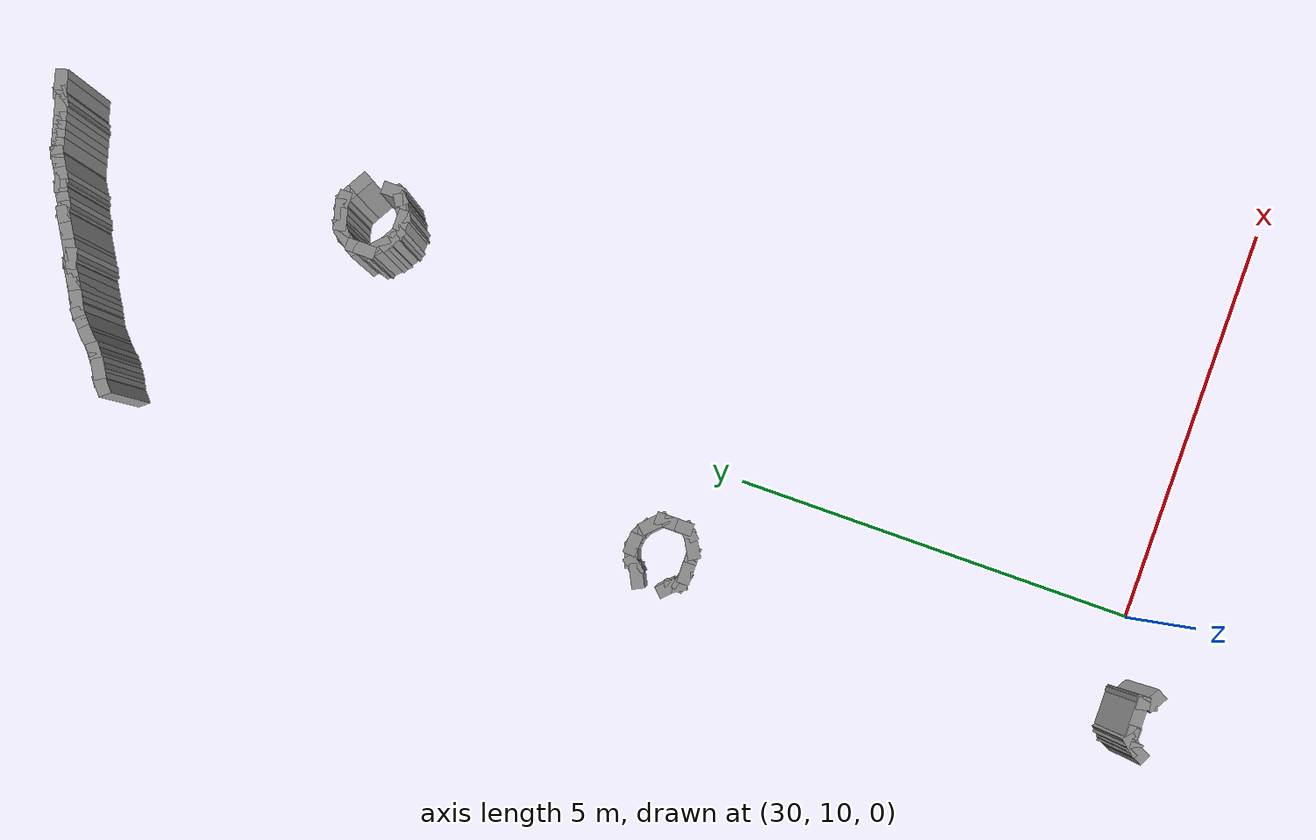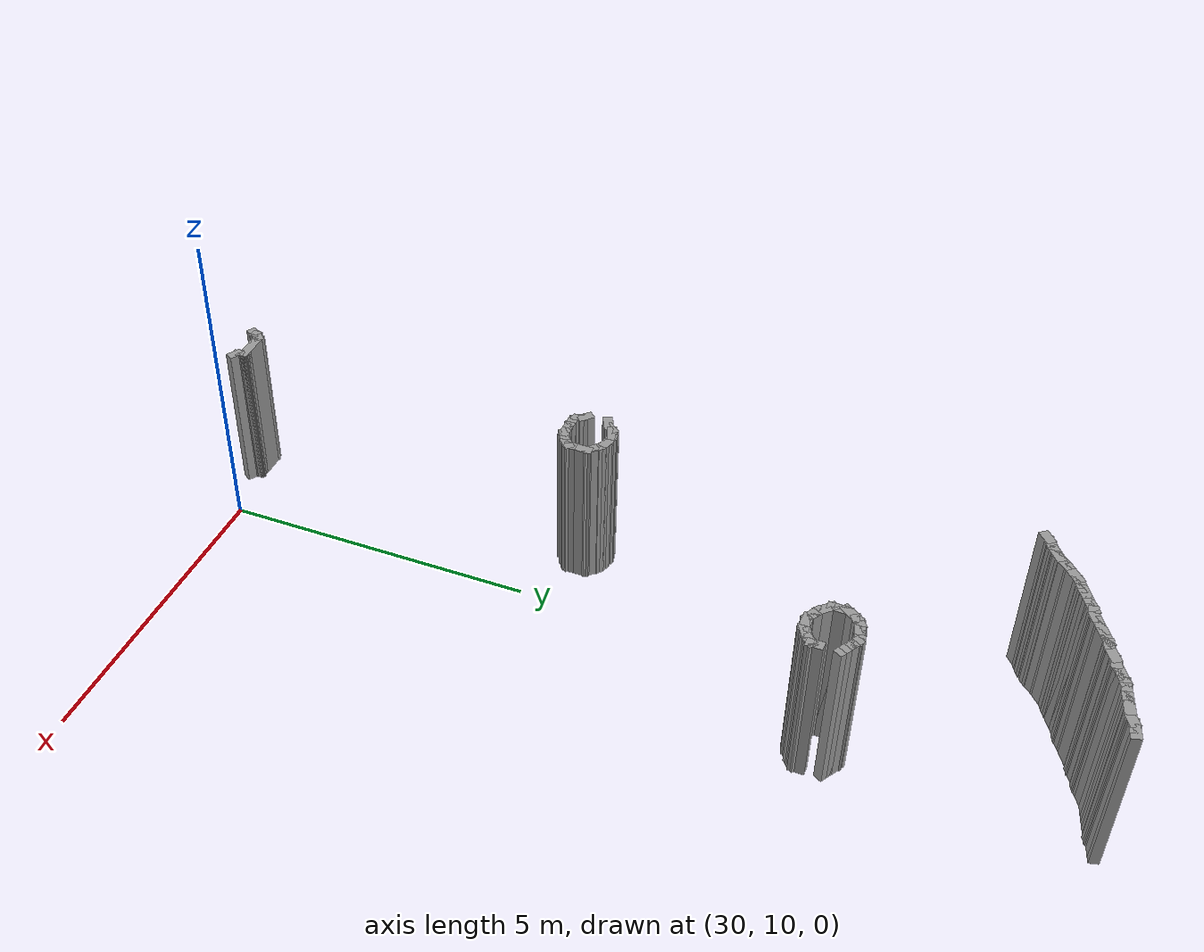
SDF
<sdf version="1.6">
 <model name="draft3">
  <pose>34.2026 -2.81154 0 0 -0 0</pose>
  <link name="Wall_144">
   <collision name="Wall_144_Collision">
    <geometry><box><size>0.253291 0.15 2.5</size></box></geometry>
    <pose>0 0 1.25 0 -0 0</pose>
   </collision>
   <visual name="Wall_144_Visual">
    <pose>0 0 1.25 0 -0 0</pose>
    <geometry><box><size>0.253291 0.15 2.5</size></box></geometry>
    <material>
     <script><uri>file://media/materials/scripts/gazebo.material</uri><name>Gazebo/Grey</name></script>
     <ambient>1 1 1 1</ambient>
    </material>
   </visual>
   <pose>-5.68023 25.2011 0 0 -0 0.694738</pose>
  </link>
  <link name="Wall_145">
   <collision name="Wall_145_Collision">
    <geometry><box><size>0.238716 0.15 2.5</size></box></geometry>
    <pose>0 0 1.25 0 -0 0</pose>
   </collision>
   <visual name="Wall_145_Visual">
    <pose>0 0 1.25 0 -0 0</pose>
    <geometry><box><size>0.238716 0.15 2.5</size></box></geometry>
    <material>
     <script><uri>file://media/materials/scripts/gazebo.material</uri><name>Gazebo/Grey</name></script>
     <ambient>1 1 1 1</ambient>
    </material>
   </visual>
   <pose>-5.60088 25.254 0 0 -0 0.463648</pose>
  </link>
  <link name="Wall_146">
   <collision name="Wall_146_Collision">
    <geometry><box><size>0.256623 0.15 2.5</size></box></geometry>
    <pose>0 0 1.25 0 -0 0</pose>
   </collision>
   <visual name="Wall_146_Visual">
    <pose>0 0 1.25 0 -0 0</pose>
    <geometry><box><size>0.256623 0.15 2.5</size></box></geometry>
    <material>
     <script><uri>file://media/materials/scripts/gazebo.material</uri><name>Gazebo/Grey</name></script>
     <ambient>1 1 1 1</ambient>
    </material>
   </visual>
   <pose>-5.51492 25.3003 0 0 -0 0.519146</pose>
  </link>
  <link name="Wall_147">
   <collision name="Wall_147_Collision">
    <geometry><box><size>0.216125 0.15 2.5</size></box></geometry>
    <pose>0 0 1.25 0 -0 0</pose>
   </collision>
   <visual name="Wall_147_Visual">
    <pose>0 0 1.25 0 -0 0</pose>
    <geometry><box><size>0.216125 0.15 2.5</size></box></geometry>
    <material>
     <script><uri>file://media/materials/scripts/gazebo.material</uri><name>Gazebo/Grey</name></script>
     <ambient>1 1 1 1</ambient>
    </material>
   </visual>
   <pose>-5.44218 25.3465 0 0 -0 0.643501</pose>
  </link>
  <link name="Wall_148">
   <collision name="Wall_148_Collision">
    <geometry><box><size>0.263766 0.15 2.5</size></box></geometry>
    <pose>0 0 1.25 0 -0 0</pose>
   </collision>
   <visual name="Wall_148_Visual">
    <pose>0 0 1.25 0 -0 0</pose>
    <geometry><box><size>0.263766 0.15 2.5</size></box></geometry>
    <material>
     <script><uri>file://media/materials/scripts/gazebo.material</uri><name>Gazebo/Grey</name></script>
     <ambient>1 1 1 1</ambient>
    </material>
   </visual>
   <pose>-5.36944 25.3994 0 0 -0 0.620249</pose>
  </link>
  <link name="Wall_149">
   <collision name="Wall_149_Collision">
    <geometry><box><size>0.262218 0.15 2.5</size></box></geometry>
    <pose>0 0 1.25 0 -0 0</pose>
   </collision>
   <visual name="Wall_149_Visual">
    <pose>0 0 1.25 0 -0 0</pose>
    <geometry><box><size>0.262218 0.15 2.5</size></box></geometry>
    <material>
     <script><uri>file://media/materials/scripts/gazebo.material</uri><name>Gazebo/Grey</name></script>
     <ambient>1 1 1 1</ambient>
    </material>
   </visual>
   <pose>-5.28348 25.4722 0 0 -0 0.785398</pose>
  </link>
  <link name="Wall_150">
   <collision name="Wall_150_Collision">
    <geometry><box><size>0.243515 0.15 2.5</size></box></geometry>
    <pose>0 0 1.25 0 -0 0</pose>
   </collision>
   <visual name="Wall_150_Visual">
    <pose>0 0 1.25 0 -0 0</pose>
    <geometry><box><size>0.243515 0.15 2.5</size></box></geometry>
    <material>
     <script><uri>file://media/materials/scripts/gazebo.material</uri><name>Gazebo/Grey</name></script>
     <ambient>1 1 1 1</ambient>
    </material>
   </visual>
   <pose>-5.21074 25.5449 0 0 -0 0.785398</pose>
  </link>
  <link name="Wall_151">
   <collision name="Wall_151_Collision">
    <geometry><box><size>0.271928 0.15 2.5</size></box></geometry>
    <pose>0 0 1.25 0 -0 0</pose>
   </collision>
   <visual name="Wall_151_Visual">
    <pose>0 0 1.25 0 -0 0</pose>
    <geometry><box><size>0.271928 0.15 2.5</size></box></geometry>
    <material>
     <script><uri>file://media/materials/scripts/gazebo.material</uri><name>Gazebo/Grey</name></script>
     <ambient>1 1 1 1</ambient>
    </material>
   </visual>
   <pose>-5.13139 25.6177 0 0 -0 0.708626</pose>
  </link>
  <link name="Wall_152">
   <collision name="Wall_152_Collision">
    <geometry><box><size>0.271928 0.15 2.5</size></box></geometry>
    <pose>0 0 1.25 0 -0 0</pose>
   </collision>
   <visual name="Wall_152_Visual">
    <pose>0 0 1.25 0 -0 0</pose>
    <geometry><box><size>0.271928 0.15 2.5</size></box></geometry>
    <material>
     <script><uri>file://media/materials/scripts/gazebo.material</uri><name>Gazebo/Grey</name></script>
     <ambient>1 1 1 1</ambient>
    </material>
   </visual>
   <pose>-5.03882 25.697 0 0 -0 0.708626</pose>
  </link>
  <link name="Wall_153">
   <collision name="Wall_153_Collision">
    <geometry><box><size>0.256623 0.15 2.5</size></box></geometry>
    <pose>0 0 1.25 0 -0 0</pose>
   </collision>
   <visual name="Wall_153_Visual">
    <pose>0 0 1.25 0 -0 0</pose>
    <geometry><box><size>0.256623 0.15 2.5</size></box></geometry>
    <material>
     <script><uri>file://media/materials/scripts/gazebo.material</uri><name>Gazebo/Grey</name></script>
     <ambient>1 1 1 1</ambient>
    </material>
   </visual>
   <pose>-4.94624 25.7631 0 0 -0 0.519146</pose>
  </link>
  <link name="Wall_154">
   <collision name="Wall_154_Collision">
    <geometry><box><size>0.238716 0.15 2.5</size></box></geometry>
    <pose>0 0 1.25 0 -0 0</pose>
   </collision>
   <visual name="Wall_154_Visual">
    <pose>0 0 1.25 0 -0 0</pose>
    <geometry><box><size>0.238716 0.15 2.5</size></box></geometry>
    <material>
     <script><uri>file://media/materials/scripts/gazebo.material</uri><name>Gazebo/Grey</name></script>
     <ambient>1 1 1 1</ambient>
    </material>
   </visual>
   <pose>-4.86028 25.8094 0 0 -0 0.463648</pose>
  </link>
  <link name="Wall_155">
   <collision name="Wall_155_Collision">
    <geometry><box><size>0.25 0.15 2.5</size></box></geometry>
    <pose>0 0 1.25 0 -0 0</pose>
   </collision>
   <visual name="Wall_155_Visual">
    <pose>0 0 1.25 0 -0 0</pose>
    <geometry><box><size>0.25 0.15 2.5</size></box></geometry>
    <material>
     <script><uri>file://media/materials/scripts/gazebo.material</uri><name>Gazebo/Grey</name></script>
     <ambient>1 1 1 1</ambient>
    </material>
   </visual>
   <pose>-4.7773 25.8543 0 0 -0 0.523599</pose>
  </link>
  <link name="Wall_156">
   <collision name="Wall_156_Collision">
    <geometry><box><size>0.25 0.15 2.5</size></box></geometry>
    <pose>0 0 1.25 0 -0 0</pose>
   </collision>
   <visual name="Wall_156_Visual">
    <pose>0 0 1.25 0 -0 0</pose>
    <geometry><box><size>0.25 0.15 2.5</size></box></geometry>
    <material>
     <script><uri>file://media/materials/scripts/gazebo.material</uri><name>Gazebo/Grey</name></script>
     <ambient>1 1 1 1</ambient>
    </material>
   </visual>
   <pose>-4.6907 25.9043 0 0 -0 0.523599</pose>
  </link>
  <link name="Wall_157">
   <collision name="Wall_157_Collision">
    <geometry><box><size>0.25 0.15 2.5</size></box></geometry>
    <pose>0 0 1.25 0 -0 0</pose>
   </collision>
   <visual name="Wall_157_Visual">
    <pose>0 0 1.25 0 -0 0</pose>
    <geometry><box><size>0.25 0.15 2.5</size></box></geometry>
    <material>
     <script><uri>file://media/materials/scripts/gazebo.material</uri><name>Gazebo/Grey</name></script>
     <ambient>1 1 1 1</ambient>
    </material>
   </visual>
   <pose>-4.6041 25.9543 0 0 -0 0.523599</pose>
  </link>
  <link name="Wall_158">
   <collision name="Wall_158_Collision">
    <geometry><box><size>0.25 0.15 2.5</size></box></geometry>
    <pose>0 0 1.25 0 -0 0</pose>
   </collision>
   <visual name="Wall_158_Visual">
    <pose>0 0 1.25 0 -0 0</pose>
    <geometry><box><size>0.25 0.15 2.5</size></box></geometry>
    <material>
     <script><uri>file://media/materials/scripts/gazebo.material</uri><name>Gazebo/Grey</name></script>
     <ambient>1 1 1 1</ambient>
    </material>
   </visual>
   <pose>-4.5175 26.0043 0 0 -0 0.523599</pose>
  </link>
  <link name="Wall_159">
   <collision name="Wall_159_Collision">
    <geometry><box><size>0.25 0.15 2.5</size></box></geometry>
    <pose>0 0 1.25 0 -0 0</pose>
   </collision>
   <visual name="Wall_159_Visual">
    <pose>0 0 1.25 0 -0 0</pose>
    <geometry><box><size>0.25 0.15 2.5</size></box></geometry>
    <material>
     <script><uri>file://media/materials/scripts/gazebo.material</uri><name>Gazebo/Grey</name></script>
     <ambient>1 1 1 1</ambient>
    </material>
   </visual>
   <pose>-4.4259 26.0422 0 0 -0 0.261799</pose>
  </link>
  <link name="Wall_160">
   <collision name="Wall_160_Collision">
    <geometry><box><size>0.25 0.15 2.5</size></box></geometry>
    <pose>0 0 1.25 0 -0 0</pose>
   </collision>
   <visual name="Wall_160_Visual">
    <pose>0 0 1.25 0 -0 0</pose>
    <geometry><box><size>0.25 0.15 2.5</size></box></geometry>
    <material>
     <script><uri>file://media/materials/scripts/gazebo.material</uri><name>Gazebo/Grey</name></script>
     <ambient>1 1 1 1</ambient>
    </material>
   </visual>
   <pose>-4.3343 26.0801 0 0 -0 0.523599</pose>
  </link>
  <link name="Wall_161">
   <collision name="Wall_161_Collision">
    <geometry><box><size>0.25 0.15 2.5</size></box></geometry>
    <pose>0 0 1.25 0 -0 0</pose>
   </collision>
   <visual name="Wall_161_Visual">
    <pose>0 0 1.25 0 -0 0</pose>
    <geometry><box><size>0.25 0.15 2.5</size></box></geometry>
    <material>
     <script><uri>file://media/materials/scripts/gazebo.material</uri><name>Gazebo/Grey</name></script>
     <ambient>1 1 1 1</ambient>
    </material>
   </visual>
   <pose>-4.2477 26.1301 0 0 -0 0.523599</pose>
  </link>
  <link name="Wall_162">
   <collision name="Wall_162_Collision">
    <geometry><box><size>0.25 0.15 2.5</size></box></geometry>
    <pose>0 0 1.25 0 -0 0</pose>
   </collision>
   <visual name="Wall_162_Visual">
    <pose>0 0 1.25 0 -0 0</pose>
    <geometry><box><size>0.25 0.15 2.5</size></box></geometry>
    <material>
     <script><uri>file://media/materials/scripts/gazebo.material</uri><name>Gazebo/Grey</name></script>
     <ambient>1 1 1 1</ambient>
    </material>
   </visual>
   <pose>-4.1611 26.1801 0 0 -0 0.523599</pose>
  </link>
  <link name="Wall_163">
   <collision name="Wall_163_Collision">
    <geometry><box><size>0.25 0.15 2.5</size></box></geometry>
    <pose>0 0 1.25 0 -0 0</pose>
   </collision>
   <visual name="Wall_163_Visual">
    <pose>0 0 1.25 0 -0 0</pose>
    <geometry><box><size>0.25 0.15 2.5</size></box></geometry>
    <material>
     <script><uri>file://media/materials/scripts/gazebo.material</uri><name>Gazebo/Grey</name></script>
     <ambient>1 1 1 1</ambient>
    </material>
   </visual>
   <pose>-4.07449 26.2301 0 0 -0 0.523599</pose>
  </link>
  <link name="Wall_164">
   <collision name="Wall_164_Collision">
    <geometry><box><size>0.25 0.15 2.5</size></box></geometry>
    <pose>0 0 1.25 0 -0 0</pose>
   </collision>
   <visual name="Wall_164_Visual">
    <pose>0 0 1.25 0 -0 0</pose>
    <geometry><box><size>0.25 0.15 2.5</size></box></geometry>
    <material>
     <script><uri>file://media/materials/scripts/gazebo.material</uri><name>Gazebo/Grey</name></script>
     <ambient>1 1 1 1</ambient>
    </material>
   </visual>
   <pose>-3.98789 26.2801 0 0 -0 0.523599</pose>
  </link>
  <link name="Wall_165">
   <collision name="Wall_165_Collision">
    <geometry><box><size>0.25 0.15 2.5</size></box></geometry>
    <pose>0 0 1.25 0 -0 0</pose>
   </collision>
   <visual name="Wall_165_Visual">
    <pose>0 0 1.25 0 -0 0</pose>
    <geometry><box><size>0.25 0.15 2.5</size></box></geometry>
    <material>
     <script><uri>file://media/materials/scripts/gazebo.material</uri><name>Gazebo/Grey</name></script>
     <ambient>1 1 1 1</ambient>
    </material>
   </visual>
   <pose>-3.89629 26.3181 0 0 -0 0.261799</pose>
  </link>
  <link name="Wall_166">
   <collision name="Wall_166_Collision">
    <geometry><box><size>0.25 0.15 2.5</size></box></geometry>
    <pose>0 0 1.25 0 -0 0</pose>
   </collision>
   <visual name="Wall_166_Visual">
    <pose>0 0 1.25 0 -0 0</pose>
    <geometry><box><size>0.25 0.15 2.5</size></box></geometry>
    <material>
     <script><uri>file://media/materials/scripts/gazebo.material</uri><name>Gazebo/Grey</name></script>
     <ambient>1 1 1 1</ambient>
    </material>
   </visual>
   <pose>-3.80469 26.356 0 0 -0 0.523599</pose>
  </link>
  <link name="Wall_167">
   <collision name="Wall_167_Collision">
    <geometry><box><size>0.25 0.15 2.5</size></box></geometry>
    <pose>0 0 1.25 0 -0 0</pose>
   </collision>
   <visual name="Wall_167_Visual">
    <pose>0 0 1.25 0 -0 0</pose>
    <geometry><box><size>0.25 0.15 2.5</size></box></geometry>
    <material>
     <script><uri>file://media/materials/scripts/gazebo.material</uri><name>Gazebo/Grey</name></script>
     <ambient>1 1 1 1</ambient>
    </material>
   </visual>
   <pose>-3.71809 26.406 0 0 -0 0.523599</pose>
  </link>
  <link name="Wall_168">
   <collision name="Wall_168_Collision">
    <geometry><box><size>0.25 0.15 2.5</size></box></geometry>
    <pose>0 0 1.25 0 -0 0</pose>
   </collision>
   <visual name="Wall_168_Visual">
    <pose>0 0 1.25 0 -0 0</pose>
    <geometry><box><size>0.25 0.15 2.5</size></box></geometry>
    <material>
     <script><uri>file://media/materials/scripts/gazebo.material</uri><name>Gazebo/Grey</name></script>
     <ambient>1 1 1 1</ambient>
    </material>
   </visual>
   <pose>-3.62649 26.444 0 0 -0 0.261799</pose>
  </link>
  <link name="Wall_169">
   <collision name="Wall_169_Collision">
    <geometry><box><size>0.25 0.15 2.5</size></box></geometry>
    <pose>0 0 1.25 0 -0 0</pose>
   </collision>
   <visual name="Wall_169_Visual">
    <pose>0 0 1.25 0 -0 0</pose>
    <geometry><box><size>0.25 0.15 2.5</size></box></geometry>
    <material>
     <script><uri>file://media/materials/scripts/gazebo.material</uri><name>Gazebo/Grey</name></script>
     <ambient>1 1 1 1</ambient>
    </material>
   </visual>
   <pose>-3.5349 26.4819 0 0 -0 0.523599</pose>
  </link>
  <link name="Wall_170">
   <collision name="Wall_170_Collision">
    <geometry><box><size>0.25 0.15 2.5</size></box></geometry>
    <pose>0 0 1.25 0 -0 0</pose>
   </collision>
   <visual name="Wall_170_Visual">
    <pose>0 0 1.25 0 -0 0</pose>
    <geometry><box><size>0.25 0.15 2.5</size></box></geometry>
    <material>
     <script><uri>file://media/materials/scripts/gazebo.material</uri><name>Gazebo/Grey</name></script>
     <ambient>1 1 1 1</ambient>
    </material>
   </visual>
   <pose>-3.44829 26.5319 0 0 -0 0.523599</pose>
  </link>
  <link name="Wall_171">
   <collision name="Wall_171_Collision">
    <geometry><box><size>0.25 0.15 2.5</size></box></geometry>
    <pose>0 0 1.25 0 -0 0</pose>
   </collision>
   <visual name="Wall_171_Visual">
    <pose>0 0 1.25 0 -0 0</pose>
    <geometry><box><size>0.25 0.15 2.5</size></box></geometry>
    <material>
     <script><uri>file://media/materials/scripts/gazebo.material</uri><name>Gazebo/Grey</name></script>
     <ambient>1 1 1 1</ambient>
    </material>
   </visual>
   <pose>-3.36169 26.5819 0 0 -0 0.523599</pose>
  </link>
  <link name="Wall_172">
   <collision name="Wall_172_Collision">
    <geometry><box><size>0.25 0.15 2.5</size></box></geometry>
    <pose>0 0 1.25 0 -0 0</pose>
   </collision>
   <visual name="Wall_172_Visual">
    <pose>0 0 1.25 0 -0 0</pose>
    <geometry><box><size>0.25 0.15 2.5</size></box></geometry>
    <material>
     <script><uri>file://media/materials/scripts/gazebo.material</uri><name>Gazebo/Grey</name></script>
     <ambient>1 1 1 1</ambient>
    </material>
   </visual>
   <pose>-3.27009 26.6198 0 0 -0 0.261799</pose>
  </link>
  <link name="Wall_173">
   <collision name="Wall_173_Collision">
    <geometry><box><size>0.25 0.15 2.5</size></box></geometry>
    <pose>0 0 1.25 0 -0 0</pose>
   </collision>
   <visual name="Wall_173_Visual">
    <pose>0 0 1.25 0 -0 0</pose>
    <geometry><box><size>0.25 0.15 2.5</size></box></geometry>
    <material>
     <script><uri>file://media/materials/scripts/gazebo.material</uri><name>Gazebo/Grey</name></script>
     <ambient>1 1 1 1</ambient>
    </material>
   </visual>
   <pose>-3.1735 26.6457 0 0 -0 0.261799</pose>
  </link>
  <link name="Wall_174">
   <collision name="Wall_174_Collision">
    <geometry><box><size>0.25 0.15 2.5</size></box></geometry>
    <pose>0 0 1.25 0 -0 0</pose>
   </collision>
   <visual name="Wall_174_Visual">
    <pose>0 0 1.25 0 -0 0</pose>
    <geometry><box><size>0.25 0.15 2.5</size></box></geometry>
    <material>
     <script><uri>file://media/materials/scripts/gazebo.material</uri><name>Gazebo/Grey</name></script>
     <ambient>1 1 1 1</ambient>
    </material>
   </visual>
   <pose>-3.07691 26.6716 0 0 -0 0.261799</pose>
  </link>
  <link name="Wall_175">
   <collision name="Wall_175_Collision">
    <geometry><box><size>0.25 0.15 2.5</size></box></geometry>
    <pose>0 0 1.25 0 -0 0</pose>
   </collision>
   <visual name="Wall_175_Visual">
    <pose>0 0 1.25 0 -0 0</pose>
    <geometry><box><size>0.25 0.15 2.5</size></box></geometry>
    <material>
     <script><uri>file://media/materials/scripts/gazebo.material</uri><name>Gazebo/Grey</name></script>
     <ambient>1 1 1 1</ambient>
    </material>
   </visual>
   <pose>-2.98032 26.6975 0 0 -0 0.261799</pose>
  </link>
  <link name="Wall_176">
   <collision name="Wall_176_Collision">
    <geometry><box><size>0.25 0.15 2.5</size></box></geometry>
    <pose>0 0 1.25 0 -0 0</pose>
   </collision>
   <visual name="Wall_176_Visual">
    <pose>0 0 1.25 0 -0 0</pose>
    <geometry><box><size>0.25 0.15 2.5</size></box></geometry>
    <material>
     <script><uri>file://media/materials/scripts/gazebo.material</uri><name>Gazebo/Grey</name></script>
     <ambient>1 1 1 1</ambient>
    </material>
   </visual>
   <pose>-2.88372 26.7234 0 0 -0 0.261799</pose>
  </link>
  <link name="Wall_177">
   <collision name="Wall_177_Collision">
    <geometry><box><size>0.25 0.15 2.5</size></box></geometry>
    <pose>0 0 1.25 0 -0 0</pose>
   </collision>
   <visual name="Wall_177_Visual">
    <pose>0 0 1.25 0 -0 0</pose>
    <geometry><box><size>0.25 0.15 2.5</size></box></geometry>
    <material>
     <script><uri>file://media/materials/scripts/gazebo.material</uri><name>Gazebo/Grey</name></script>
     <ambient>1 1 1 1</ambient>
    </material>
   </visual>
   <pose>-2.78713 26.7493 0 0 -0 0.261799</pose>
  </link>
  <link name="Wall_178">
   <collision name="Wall_178_Collision">
    <geometry><box><size>0.25 0.15 2.5</size></box></geometry>
    <pose>0 0 1.25 0 -0 0</pose>
   </collision>
   <visual name="Wall_178_Visual">
    <pose>0 0 1.25 0 -0 0</pose>
    <geometry><box><size>0.25 0.15 2.5</size></box></geometry>
    <material>
     <script><uri>file://media/materials/scripts/gazebo.material</uri><name>Gazebo/Grey</name></script>
     <ambient>1 1 1 1</ambient>
    </material>
   </visual>
   <pose>-2.69553 26.7872 0 0 -0 0.523599</pose>
  </link>
  <link name="Wall_179">
   <collision name="Wall_179_Collision">
    <geometry><box><size>0.25 0.15 2.5</size></box></geometry>
    <pose>0 0 1.25 0 -0 0</pose>
   </collision>
   <visual name="Wall_179_Visual">
    <pose>0 0 1.25 0 -0 0</pose>
    <geometry><box><size>0.25 0.15 2.5</size></box></geometry>
    <material>
     <script><uri>file://media/materials/scripts/gazebo.material</uri><name>Gazebo/Grey</name></script>
     <ambient>1 1 1 1</ambient>
    </material>
   </visual>
   <pose>-2.60394 26.8251 0 0 -0 0.261799</pose>
  </link>
  <link name="Wall_180">
   <collision name="Wall_180_Collision">
    <geometry><box><size>0.25 0.15 2.5</size></box></geometry>
    <pose>0 0 1.25 0 -0 0</pose>
   </collision>
   <visual name="Wall_180_Visual">
    <pose>0 0 1.25 0 -0 0</pose>
    <geometry><box><size>0.25 0.15 2.5</size></box></geometry>
    <material>
     <script><uri>file://media/materials/scripts/gazebo.material</uri><name>Gazebo/Grey</name></script>
     <ambient>1 1 1 1</ambient>
    </material>
   </visual>
   <pose>-2.50734 26.851 0 0 -0 0.261799</pose>
  </link>
  <link name="Wall_386">
   <collision name="Wall_386_Collision">
    <geometry><box><size>0.5 0.15 2.5</size></box></geometry>
    <pose>0 0 1.25 0 -0 0</pose>
   </collision>
   <visual name="Wall_386_Visual">
    <pose>0 0 1.25 0 -0 0</pose>
    <geometry><box><size>0.5 0.15 2.5</size></box></geometry>
    <material>
     <script><uri>file://media/materials/scripts/gazebo.material</uri><name>Gazebo/Grey</name></script>
     <ambient>1 1 1 1</ambient>
    </material>
   </visual>
   <pose>-5.31074 12.6698 0 0 -0 0</pose>
  </link>
  <link name="Wall_387">
   <collision name="Wall_387_Collision">
    <geometry><box><size>0.16 0.15 2.5</size></box></geometry>
    <pose>0 0 1.25 0 -0 0</pose>
   </collision>
   <visual name="Wall_387_Visual">
    <pose>0 0 1.25 0 -0 0</pose>
    <geometry><box><size>0.16 0.15 2.5</size></box></geometry>
    <material>
     <script><uri>file://media/materials/scripts/gazebo.material</uri><name>Gazebo/Grey</name></script>
     <ambient>1 1 1 1</ambient>
    </material>
   </visual>
   <pose>-5.13074 12.6698 0 0 -0 0</pose>
  </link>
  <link name="Wall_388">
   <collision name="Wall_388_Collision">
    <geometry><box><size>0.16 0.15 2.5</size></box></geometry>
    <pose>0 0 1.25 0 -0 0</pose>
   </collision>
   <visual name="Wall_388_Visual">
    <pose>0 0 1.25 0 -0 0</pose>
    <geometry><box><size>0.16 0.15 2.5</size></box></geometry>
    <material>
     <script><uri>file://media/materials/scripts/gazebo.material</uri><name>Gazebo/Grey</name></script>
     <ambient>1 1 1 1</ambient>
    </material>
   </visual>
   <pose>-5.13074 12.6698 0 0 -0 3.14159</pose>
  </link>
  <link name="Wall_389">
   <collision name="Wall_389_Collision">
    <geometry><box><size>0.25 0.15 2.5</size></box></geometry>
    <pose>0 0 1.25 0 -0 0</pose>
   </collision>
   <visual name="Wall_389_Visual">
    <pose>0 0 1.25 0 -0 0</pose>
    <geometry><box><size>0.25 0.15 2.5</size></box></geometry>
    <material>
     <script><uri>file://media/materials/scripts/gazebo.material</uri><name>Gazebo/Grey</name></script>
     <ambient>1 1 1 1</ambient>
    </material>
   </visual>
   <pose>-5.1228 12.6215 0 0 0 -1.309</pose>
  </link>
  <link name="Wall_390">
   <collision name="Wall_390_Collision">
    <geometry><box><size>0.25 0.15 2.5</size></box></geometry>
    <pose>0 0 1.25 0 -0 0</pose>
   </collision>
   <visual name="Wall_390_Visual">
    <pose>0 0 1.25 0 -0 0</pose>
    <geometry><box><size>0.25 0.15 2.5</size></box></geometry>
    <material>
     <script><uri>file://media/materials/scripts/gazebo.material</uri><name>Gazebo/Grey</name></script>
     <ambient>1 1 1 1</ambient>
    </material>
   </visual>
   <pose>-5.06656 12.5482 0 0 0 -0.523599</pose>
  </link>
  <link name="Wall_409">
   <collision name="Wall_409_Collision">
    <geometry><box><size>0.242149 0.15 2.5</size></box></geometry>
    <pose>0 0 1.25 0 -0 0</pose>
   </collision>
   <visual name="Wall_409_Visual">
    <pose>0 0 1.25 0 -0 0</pose>
    <geometry><box><size>0.242149 0.15 2.5</size></box></geometry>
    <material>
     <script><uri>file://media/materials/scripts/gazebo.material</uri><name>Gazebo/Grey</name></script>
     <ambient>1 1 1 1</ambient>
    </material>
   </visual>
   <pose>-5.69187 12.5362 0 0 -0 1.09802</pose>
  </link>
  <link name="Wall_410">
   <collision name="Wall_410_Collision">
    <geometry><box><size>0.16 0.15 2.5</size></box></geometry>
    <pose>0 0 1.25 0 -0 0</pose>
   </collision>
   <visual name="Wall_410_Visual">
    <pose>0 0 1.25 0 -0 0</pose>
    <geometry><box><size>0.16 0.15 2.5</size></box></geometry>
    <material>
     <script><uri>file://media/materials/scripts/gazebo.material</uri><name>Gazebo/Grey</name></script>
     <ambient>1 1 1 1</ambient>
    </material>
   </visual>
   <pose>-5.66589 12.5772 0 0 -0 0</pose>
  </link>
  <link name="Wall_411">
   <collision name="Wall_411_Collision">
    <geometry><box><size>0.255384 0.15 2.5</size></box></geometry>
    <pose>0 0 1.25 0 -0 0</pose>
   </collision>
   <visual name="Wall_411_Visual">
    <pose>0 0 1.25 0 -0 0</pose>
    <geometry><box><size>0.255384 0.15 2.5</size></box></geometry>
    <material>
     <script><uri>file://media/materials/scripts/gazebo.material</uri><name>Gazebo/Grey</name></script>
     <ambient>1 1 1 1</ambient>
    </material>
   </visual>
   <pose>-5.62622 12.6169 0 0 -0 0.852547</pose>
  </link>
  <link name="Wall_412">
   <collision name="Wall_412_Collision">
    <geometry><box><size>0.2558 0.15 2.5</size></box></geometry>
    <pose>0 0 1.25 0 -0 0</pose>
   </collision>
   <visual name="Wall_412_Visual">
    <pose>0 0 1.25 0 -0 0</pose>
    <geometry><box><size>0.2558 0.15 2.5</size></box></geometry>
    <material>
     <script><uri>file://media/materials/scripts/gazebo.material</uri><name>Gazebo/Grey</name></script>
     <ambient>1 1 1 1</ambient>
    </material>
   </visual>
   <pose>-5.53864 12.6566 0 0 -0 0</pose>
  </link>
  <link name="Wall_534">
   <collision name="Wall_534_Collision">
    <geometry><box><size>0.25 0.15 2.5</size></box></geometry>
    <pose>0 0 1.25 0 -0 0</pose>
   </collision>
   <visual name="Wall_534_Visual">
    <pose>0 0 1.25 0 -0 0</pose>
    <geometry><box><size>0.25 0.15 2.5</size></box></geometry>
    <material>
     <script><uri>file://media/materials/scripts/gazebo.material</uri><name>Gazebo/Grey</name></script>
     <ambient>1 1 1 1</ambient>
    </material>
   </visual>
   <pose>-5.71488 18.2592 0 0 0 -0.785398</pose>
  </link>
  <link name="Wall_535">
   <collision name="Wall_535_Collision">
    <geometry><box><size>0.25 0.15 2.5</size></box></geometry>
    <pose>0 0 1.25 0 -0 0</pose>
   </collision>
   <visual name="Wall_535_Visual">
    <pose>0 0 1.25 0 -0 0</pose>
    <geometry><box><size>0.25 0.15 2.5</size></box></geometry>
    <material>
     <script><uri>file://media/materials/scripts/gazebo.material</uri><name>Gazebo/Grey</name></script>
     <ambient>1 1 1 1</ambient>
    </material>
   </visual>
   <pose>-5.65453 18.1806 0 0 0 -1.0472</pose>
  </link>
  <link name="Wall_536">
   <collision name="Wall_536_Collision">
    <geometry><box><size>0.25 0.15 2.5</size></box></geometry>
    <pose>0 0 1.25 0 -0 0</pose>
   </collision>
   <visual name="Wall_536_Visual">
    <pose>0 0 1.25 0 -0 0</pose>
    <geometry><box><size>0.25 0.15 2.5</size></box></geometry>
    <material>
     <script><uri>file://media/materials/scripts/gazebo.material</uri><name>Gazebo/Grey</name></script>
     <ambient>1 1 1 1</ambient>
    </material>
   </visual>
   <pose>-5.58123 18.1243 0 0 0 -0.261799</pose>
  </link>
  <link name="Wall_537">
   <collision name="Wall_537_Collision">
    <geometry><box><size>0.25 0.15 2.5</size></box></geometry>
    <pose>0 0 1.25 0 -0 0</pose>
   </collision>
   <visual name="Wall_537_Visual">
    <pose>0 0 1.25 0 -0 0</pose>
    <geometry><box><size>0.25 0.15 2.5</size></box></geometry>
    <material>
     <script><uri>file://media/materials/scripts/gazebo.material</uri><name>Gazebo/Grey</name></script>
     <ambient>1 1 1 1</ambient>
    </material>
   </visual>
   <pose>-5.48294 18.1114 0 0 -0 0</pose>
  </link>
  <link name="Wall_538">
   <collision name="Wall_538_Collision">
    <geometry><box><size>0.25 0.15 2.5</size></box></geometry>
    <pose>0 0 1.25 0 -0 0</pose>
   </collision>
   <visual name="Wall_538_Visual">
    <pose>0 0 1.25 0 -0 0</pose>
    <geometry><box><size>0.25 0.15 2.5</size></box></geometry>
    <material>
     <script><uri>file://media/materials/scripts/gazebo.material</uri><name>Gazebo/Grey</name></script>
     <ambient>1 1 1 1</ambient>
    </material>
   </visual>
   <pose>-5.38294 18.1114 0 0 -0 0</pose>
  </link>
  <link name="Wall_539">
   <collision name="Wall_539_Collision">
    <geometry><box><size>0.25 0.15 2.5</size></box></geometry>
    <pose>0 0 1.25 0 -0 0</pose>
   </collision>
   <visual name="Wall_539_Visual">
    <pose>0 0 1.25 0 -0 0</pose>
    <geometry><box><size>0.25 0.15 2.5</size></box></geometry>
    <material>
     <script><uri>file://media/materials/scripts/gazebo.material</uri><name>Gazebo/Grey</name></script>
     <ambient>1 1 1 1</ambient>
    </material>
   </visual>
   <pose>-5.28294 18.1114 0 0 -0 0</pose>
  </link>
  <link name="Wall_540">
   <collision name="Wall_540_Collision">
    <geometry><box><size>0.25 0.15 2.5</size></box></geometry>
    <pose>0 0 1.25 0 -0 0</pose>
   </collision>
   <visual name="Wall_540_Visual">
    <pose>0 0 1.25 0 -0 0</pose>
    <geometry><box><size>0.25 0.15 2.5</size></box></geometry>
    <material>
     <script><uri>file://media/materials/scripts/gazebo.material</uri><name>Gazebo/Grey</name></script>
     <ambient>1 1 1 1</ambient>
    </material>
   </visual>
   <pose>-5.18963 18.1364 0 0 -0 0.523599</pose>
  </link>
  <link name="Wall_541">
   <collision name="Wall_541_Collision">
    <geometry><box><size>0.25 0.15 2.5</size></box></geometry>
    <pose>0 0 1.25 0 -0 0</pose>
   </collision>
   <visual name="Wall_541_Visual">
    <pose>0 0 1.25 0 -0 0</pose>
    <geometry><box><size>0.25 0.15 2.5</size></box></geometry>
    <material>
     <script><uri>file://media/materials/scripts/gazebo.material</uri><name>Gazebo/Grey</name></script>
     <ambient>1 1 1 1</ambient>
    </material>
   </visual>
   <pose>-5.10303 18.1864 0 0 -0 0.523599</pose>
  </link>
  <link name="Wall_542">
   <collision name="Wall_542_Collision">
    <geometry><box><size>0.25 0.15 2.5</size></box></geometry>
    <pose>0 0 1.25 0 -0 0</pose>
   </collision>
   <visual name="Wall_542_Visual">
    <pose>0 0 1.25 0 -0 0</pose>
    <geometry><box><size>0.25 0.15 2.5</size></box></geometry>
    <material>
     <script><uri>file://media/materials/scripts/gazebo.material</uri><name>Gazebo/Grey</name></script>
     <ambient>1 1 1 1</ambient>
    </material>
   </visual>
   <pose>-5.02438 18.2467 0 0 -0 0.785398</pose>
  </link>
  <link name="Wall_543">
   <collision name="Wall_543_Collision">
    <geometry><box><size>0.25 0.15 2.5</size></box></geometry>
    <pose>0 0 1.25 0 -0 0</pose>
   </collision>
   <visual name="Wall_543_Visual">
    <pose>0 0 1.25 0 -0 0</pose>
    <geometry><box><size>0.25 0.15 2.5</size></box></geometry>
    <material>
     <script><uri>file://media/materials/scripts/gazebo.material</uri><name>Gazebo/Grey</name></script>
     <ambient>1 1 1 1</ambient>
    </material>
   </visual>
   <pose>-4.98902 18.3321 0 0 -0 1.5708</pose>
  </link>
  <link name="Wall_544">
   <collision name="Wall_544_Collision">
    <geometry><box><size>0.25 0.15 2.5</size></box></geometry>
    <pose>0 0 1.25 0 -0 0</pose>
   </collision>
   <visual name="Wall_544_Visual">
    <pose>0 0 1.25 0 -0 0</pose>
    <geometry><box><size>0.25 0.15 2.5</size></box></geometry>
    <material>
     <script><uri>file://media/materials/scripts/gazebo.material</uri><name>Gazebo/Grey</name></script>
     <ambient>1 1 1 1</ambient>
    </material>
   </visual>
   <pose>-4.98902 18.4321 0 0 -0 1.5708</pose>
  </link>
  <link name="Wall_545">
   <collision name="Wall_545_Collision">
    <geometry><box><size>0.25 0.15 2.5</size></box></geometry>
    <pose>0 0 1.25 0 -0 0</pose>
   </collision>
   <visual name="Wall_545_Visual">
    <pose>0 0 1.25 0 -0 0</pose>
    <geometry><box><size>0.25 0.15 2.5</size></box></geometry>
    <material>
     <script><uri>file://media/materials/scripts/gazebo.material</uri><name>Gazebo/Grey</name></script>
     <ambient>1 1 1 1</ambient>
    </material>
   </visual>
   <pose>-4.98902 18.5321 0 0 -0 1.5708</pose>
  </link>
  <link name="Wall_546">
   <collision name="Wall_546_Collision">
    <geometry><box><size>0.25 0.15 2.5</size></box></geometry>
    <pose>0 0 1.25 0 -0 0</pose>
   </collision>
   <visual name="Wall_546_Visual">
    <pose>0 0 1.25 0 -0 0</pose>
    <geometry><box><size>0.25 0.15 2.5</size></box></geometry>
    <material>
     <script><uri>file://media/materials/scripts/gazebo.material</uri><name>Gazebo/Grey</name></script>
     <ambient>1 1 1 1</ambient>
    </material>
   </visual>
   <pose>-5.02438 18.6175 0 0 -0 2.35619</pose>
  </link>
  <link name="Wall_547">
   <collision name="Wall_547_Collision">
    <geometry><box><size>0.25 0.15 2.5</size></box></geometry>
    <pose>0 0 1.25 0 -0 0</pose>
   </collision>
   <visual name="Wall_547_Visual">
    <pose>0 0 1.25 0 -0 0</pose>
    <geometry><box><size>0.25 0.15 2.5</size></box></geometry>
    <material>
     <script><uri>file://media/materials/scripts/gazebo.material</uri><name>Gazebo/Grey</name></script>
     <ambient>1 1 1 1</ambient>
    </material>
   </visual>
   <pose>-5.09509 18.6882 0 0 -0 2.35619</pose>
  </link>
  <link name="Wall_548">
   <collision name="Wall_548_Collision">
    <geometry><box><size>0.25 0.15 2.5</size></box></geometry>
    <pose>0 0 1.25 0 -0 0</pose>
   </collision>
   <visual name="Wall_548_Visual">
    <pose>0 0 1.25 0 -0 0</pose>
    <geometry><box><size>0.25 0.15 2.5</size></box></geometry>
    <material>
     <script><uri>file://media/materials/scripts/gazebo.material</uri><name>Gazebo/Grey</name></script>
     <ambient>1 1 1 1</ambient>
    </material>
   </visual>
   <pose>-5.17375 18.7485 0 0 -0 2.61799</pose>
  </link>
  <link name="Wall_549">
   <collision name="Wall_549_Collision">
    <geometry><box><size>0.25 0.15 2.5</size></box></geometry>
    <pose>0 0 1.25 0 -0 0</pose>
   </collision>
   <visual name="Wall_549_Visual">
    <pose>0 0 1.25 0 -0 0</pose>
    <geometry><box><size>0.25 0.15 2.5</size></box></geometry>
    <material>
     <script><uri>file://media/materials/scripts/gazebo.material</uri><name>Gazebo/Grey</name></script>
     <ambient>1 1 1 1</ambient>
    </material>
   </visual>
   <pose>-5.26534 18.7865 0 0 -0 2.87979</pose>
  </link>
  <link name="Wall_550">
   <collision name="Wall_550_Collision">
    <geometry><box><size>0.256194 0.15 2.5</size></box></geometry>
    <pose>0 0 1.25 0 -0 0</pose>
   </collision>
   <visual name="Wall_550_Visual">
    <pose>0 0 1.25 0 -0 0</pose>
    <geometry><box><size>0.256194 0.15 2.5</size></box></geometry>
    <material>
     <script><uri>file://media/materials/scripts/gazebo.material</uri><name>Gazebo/Grey</name></script>
     <ambient>1 1 1 1</ambient>
    </material>
   </visual>
   <pose>-5.36663 18.8028 0 0 -0 3.07769</pose>
  </link>
  <link name="Wall_551">
   <collision name="Wall_551_Collision">
    <geometry><box><size>0.304795 0.15 2.5</size></box></geometry>
    <pose>0 0 1.25 0 -0 0</pose>
   </collision>
   <visual name="Wall_551_Visual">
    <pose>0 0 1.25 0 -0 0</pose>
    <geometry><box><size>0.304795 0.15 2.5</size></box></geometry>
    <material>
     <script><uri>file://media/materials/scripts/gazebo.material</uri><name>Gazebo/Grey</name></script>
     <ambient>1 1 1 1</ambient>
    </material>
   </visual>
   <pose>-5.49235 18.7797 0 0 0 -2.79282</pose>
  </link>
  <link name="Wall_552">
   <collision name="Wall_552_Collision">
    <geometry><box><size>0.253291 0.15 2.5</size></box></geometry>
    <pose>0 0 1.25 0 -0 0</pose>
   </collision>
   <visual name="Wall_552_Visual">
    <pose>0 0 1.25 0 -0 0</pose>
    <geometry><box><size>0.253291 0.15 2.5</size></box></geometry>
    <material>
     <script><uri>file://media/materials/scripts/gazebo.material</uri><name>Gazebo/Grey</name></script>
     <ambient>1 1 1 1</ambient>
    </material>
   </visual>
   <pose>-5.59815 18.7136 0 0 0 -2.26553</pose>
  </link>
  <link name="Wall_553">
   <collision name="Wall_553_Collision">
    <geometry><box><size>0.29786 0.15 2.5</size></box></geometry>
    <pose>0 0 1.25 0 -0 0</pose>
   </collision>
   <visual name="Wall_553_Visual">
    <pose>0 0 1.25 0 -0 0</pose>
    <geometry><box><size>0.29786 0.15 2.5</size></box></geometry>
    <material>
     <script><uri>file://media/materials/scripts/gazebo.material</uri><name>Gazebo/Grey</name></script>
     <ambient>1 1 1 1</ambient>
    </material>
   </visual>
   <pose>-5.69734 18.6409 0 0 0 -2.67794</pose>
  </link>
  <link name="Wall_577">
   <collision name="Wall_577_Collision">
    <geometry><box><size>0.25 0.15 2.5</size></box></geometry>
    <pose>0 0 1.25 0 -0 0</pose>
   </collision>
   <visual name="Wall_577_Visual">
    <pose>0 0 1.25 0 -0 0</pose>
    <geometry><box><size>0.25 0.15 2.5</size></box></geometry>
    <material>
     <script><uri>file://media/materials/scripts/gazebo.material</uri><name>Gazebo/Grey</name></script>
     <ambient>1 1 1 1</ambient>
    </material>
   </visual>
   <pose>-3.19781 22.9617 0 0 0 -1.5708</pose>
  </link>
  <link name="Wall_578">
   <collision name="Wall_578_Collision">
    <geometry><box><size>0.25 0.15 2.5</size></box></geometry>
    <pose>0 0 1.25 0 -0 0</pose>
   </collision>
   <visual name="Wall_578_Visual">
    <pose>0 0 1.25 0 -0 0</pose>
    <geometry><box><size>0.25 0.15 2.5</size></box></geometry>
    <material>
     <script><uri>file://media/materials/scripts/gazebo.material</uri><name>Gazebo/Grey</name></script>
     <ambient>1 1 1 1</ambient>
    </material>
   </visual>
   <pose>-3.19781 22.8617 0 0 0 -1.5708</pose>
  </link>
  <link name="Wall_579">
   <collision name="Wall_579_Collision">
    <geometry><box><size>0.25 0.15 2.5</size></box></geometry>
    <pose>0 0 1.25 0 -0 0</pose>
   </collision>
   <visual name="Wall_579_Visual">
    <pose>0 0 1.25 0 -0 0</pose>
    <geometry><box><size>0.25 0.15 2.5</size></box></geometry>
    <material>
     <script><uri>file://media/materials/scripts/gazebo.material</uri><name>Gazebo/Grey</name></script>
     <ambient>1 1 1 1</ambient>
    </material>
   </visual>
   <pose>-3.16246 22.7764 0 0 0 -0.785398</pose>
  </link>
  <link name="Wall_580">
   <collision name="Wall_580_Collision">
    <geometry><box><size>0.25 0.15 2.5</size></box></geometry>
    <pose>0 0 1.25 0 -0 0</pose>
   </collision>
   <visual name="Wall_580_Visual">
    <pose>0 0 1.25 0 -0 0</pose>
    <geometry><box><size>0.25 0.15 2.5</size></box></geometry>
    <material>
     <script><uri>file://media/materials/scripts/gazebo.material</uri><name>Gazebo/Grey</name></script>
     <ambient>1 1 1 1</ambient>
    </material>
   </visual>
   <pose>-3.09175 22.7057 0 0 0 -0.785398</pose>
  </link>
  <link name="Wall_581">
   <collision name="Wall_581_Collision">
    <geometry><box><size>0.25 0.15 2.5</size></box></geometry>
    <pose>0 0 1.25 0 -0 0</pose>
   </collision>
   <visual name="Wall_581_Visual">
    <pose>0 0 1.25 0 -0 0</pose>
    <geometry><box><size>0.25 0.15 2.5</size></box></geometry>
    <material>
     <script><uri>file://media/materials/scripts/gazebo.material</uri><name>Gazebo/Grey</name></script>
     <ambient>1 1 1 1</ambient>
    </material>
   </visual>
   <pose>-3.01309 22.6453 0 0 0 -0.523599</pose>
  </link>
  <link name="Wall_582">
   <collision name="Wall_582_Collision">
    <geometry><box><size>0.25 0.15 2.5</size></box></geometry>
    <pose>0 0 1.25 0 -0 0</pose>
   </collision>
   <visual name="Wall_582_Visual">
    <pose>0 0 1.25 0 -0 0</pose>
    <geometry><box><size>0.25 0.15 2.5</size></box></geometry>
    <material>
     <script><uri>file://media/materials/scripts/gazebo.material</uri><name>Gazebo/Grey</name></script>
     <ambient>1 1 1 1</ambient>
    </material>
   </visual>
   <pose>-2.92649 22.5953 0 0 0 -0.523599</pose>
  </link>
  <link name="Wall_583">
   <collision name="Wall_583_Collision">
    <geometry><box><size>0.25 0.15 2.5</size></box></geometry>
    <pose>0 0 1.25 0 -0 0</pose>
   </collision>
   <visual name="Wall_583_Visual">
    <pose>0 0 1.25 0 -0 0</pose>
    <geometry><box><size>0.25 0.15 2.5</size></box></geometry>
    <material>
     <script><uri>file://media/materials/scripts/gazebo.material</uri><name>Gazebo/Grey</name></script>
     <ambient>1 1 1 1</ambient>
    </material>
   </visual>
   <pose>-2.83319 22.5703 0 0 -0 0</pose>
  </link>
  <link name="Wall_584">
   <collision name="Wall_584_Collision">
    <geometry><box><size>0.25 0.15 2.5</size></box></geometry>
    <pose>0 0 1.25 0 -0 0</pose>
   </collision>
   <visual name="Wall_584_Visual">
    <pose>0 0 1.25 0 -0 0</pose>
    <geometry><box><size>0.25 0.15 2.5</size></box></geometry>
    <material>
     <script><uri>file://media/materials/scripts/gazebo.material</uri><name>Gazebo/Grey</name></script>
     <ambient>1 1 1 1</ambient>
    </material>
   </visual>
   <pose>-2.73319 22.5703 0 0 -0 0</pose>
  </link>
  <link name="Wall_585">
   <collision name="Wall_585_Collision">
    <geometry><box><size>0.25 0.15 2.5</size></box></geometry>
    <pose>0 0 1.25 0 -0 0</pose>
   </collision>
   <visual name="Wall_585_Visual">
    <pose>0 0 1.25 0 -0 0</pose>
    <geometry><box><size>0.25 0.15 2.5</size></box></geometry>
    <material>
     <script><uri>file://media/materials/scripts/gazebo.material</uri><name>Gazebo/Grey</name></script>
     <ambient>1 1 1 1</ambient>
    </material>
   </visual>
   <pose>-2.63989 22.5953 0 0 -0 0.523599</pose>
  </link>
  <link name="Wall_586">
   <collision name="Wall_586_Collision">
    <geometry><box><size>0.25 0.15 2.5</size></box></geometry>
    <pose>0 0 1.25 0 -0 0</pose>
   </collision>
   <visual name="Wall_586_Visual">
    <pose>0 0 1.25 0 -0 0</pose>
    <geometry><box><size>0.25 0.15 2.5</size></box></geometry>
    <material>
     <script><uri>file://media/materials/scripts/gazebo.material</uri><name>Gazebo/Grey</name></script>
     <ambient>1 1 1 1</ambient>
    </material>
   </visual>
   <pose>-2.55328 22.6453 0 0 -0 0.523599</pose>
  </link>
  <link name="Wall_587">
   <collision name="Wall_587_Collision">
    <geometry><box><size>0.25 0.15 2.5</size></box></geometry>
    <pose>0 0 1.25 0 -0 0</pose>
   </collision>
   <visual name="Wall_587_Visual">
    <pose>0 0 1.25 0 -0 0</pose>
    <geometry><box><size>0.25 0.15 2.5</size></box></geometry>
    <material>
     <script><uri>file://media/materials/scripts/gazebo.material</uri><name>Gazebo/Grey</name></script>
     <ambient>1 1 1 1</ambient>
    </material>
   </visual>
   <pose>-2.47463 22.7057 0 0 -0 0.785398</pose>
  </link>
  <link name="Wall_588">
   <collision name="Wall_588_Collision">
    <geometry><box><size>0.25 0.15 2.5</size></box></geometry>
    <pose>0 0 1.25 0 -0 0</pose>
   </collision>
   <visual name="Wall_588_Visual">
    <pose>0 0 1.25 0 -0 0</pose>
    <geometry><box><size>0.25 0.15 2.5</size></box></geometry>
    <material>
     <script><uri>file://media/materials/scripts/gazebo.material</uri><name>Gazebo/Grey</name></script>
     <ambient>1 1 1 1</ambient>
    </material>
   </visual>
   <pose>-2.43927 22.791 0 0 -0 1.5708</pose>
  </link>
  <link name="Wall_592">
   <collision name="Wall_592_Collision">
    <geometry><box><size>0.25 0.15 2.5</size></box></geometry>
    <pose>0 0 1.25 0 -0 0</pose>
   </collision>
   <visual name="Wall_592_Visual">
    <pose>0 0 1.25 0 -0 0</pose>
    <geometry><box><size>0.25 0.15 2.5</size></box></geometry>
    <material>
     <script><uri>file://media/materials/scripts/gazebo.material</uri><name>Gazebo/Grey</name></script>
     <ambient>1 1 1 1</ambient>
    </material>
   </visual>
   <pose>-2.48258 23.166 0 0 -0 2.61799</pose>
  </link>
  <link name="Wall_593">
   <collision name="Wall_593_Collision">
    <geometry><box><size>0.25 0.15 2.5</size></box></geometry>
    <pose>0 0 1.25 0 -0 0</pose>
   </collision>
   <visual name="Wall_593_Visual">
    <pose>0 0 1.25 0 -0 0</pose>
    <geometry><box><size>0.25 0.15 2.5</size></box></geometry>
    <material>
     <script><uri>file://media/materials/scripts/gazebo.material</uri><name>Gazebo/Grey</name></script>
     <ambient>1 1 1 1</ambient>
    </material>
   </visual>
   <pose>-2.56918 23.216 0 0 -0 2.61799</pose>
  </link>
  <link name="Wall_594">
   <collision name="Wall_594_Collision">
    <geometry><box><size>0.25 0.15 2.5</size></box></geometry>
    <pose>0 0 1.25 0 -0 0</pose>
   </collision>
   <visual name="Wall_594_Visual">
    <pose>0 0 1.25 0 -0 0</pose>
    <geometry><box><size>0.25 0.15 2.5</size></box></geometry>
    <material>
     <script><uri>file://media/materials/scripts/gazebo.material</uri><name>Gazebo/Grey</name></script>
     <ambient>1 1 1 1</ambient>
    </material>
   </visual>
   <pose>-2.65578 23.266 0 0 -0 2.61799</pose>
  </link>
  <link name="Wall_595">
   <collision name="Wall_595_Collision">
    <geometry><box><size>0.25 0.15 2.5</size></box></geometry>
    <pose>0 0 1.25 0 -0 0</pose>
   </collision>
   <visual name="Wall_595_Visual">
    <pose>0 0 1.25 0 -0 0</pose>
    <geometry><box><size>0.25 0.15 2.5</size></box></geometry>
    <material>
     <script><uri>file://media/materials/scripts/gazebo.material</uri><name>Gazebo/Grey</name></script>
     <ambient>1 1 1 1</ambient>
    </material>
   </visual>
   <pose>-2.74908 23.291 0 0 -0 3.14159</pose>
  </link>
  <link name="Wall_596">
   <collision name="Wall_596_Collision">
    <geometry><box><size>0.25 0.15 2.5</size></box></geometry>
    <pose>0 0 1.25 0 -0 0</pose>
   </collision>
   <visual name="Wall_596_Visual">
    <pose>0 0 1.25 0 -0 0</pose>
    <geometry><box><size>0.25 0.15 2.5</size></box></geometry>
    <material>
     <script><uri>file://media/materials/scripts/gazebo.material</uri><name>Gazebo/Grey</name></script>
     <ambient>1 1 1 1</ambient>
    </material>
   </visual>
   <pose>-2.84738 23.2781 0 0 0 -2.87979</pose>
  </link>
  <link name="Wall_597">
   <collision name="Wall_597_Collision">
    <geometry><box><size>0.270433 0.15 2.5</size></box></geometry>
    <pose>0 0 1.25 0 -0 0</pose>
   </collision>
   <visual name="Wall_597_Visual">
    <pose>0 0 1.25 0 -0 0</pose>
    <geometry><box><size>0.270433 0.15 2.5</size></box></geometry>
    <material>
     <script><uri>file://media/materials/scripts/gazebo.material</uri><name>Gazebo/Grey</name></script>
     <ambient>1 1 1 1</ambient>
    </material>
   </visual>
   <pose>-2.95417 23.2508 0 0 0 -2.90198</pose>
  </link>
  <link name="Wall_598">
   <collision name="Wall_598_Collision">
    <geometry><box><size>0.263766 0.15 2.5</size></box></geometry>
    <pose>0 0 1.25 0 -0 0</pose>
   </collision>
   <visual name="Wall_598_Visual">
    <pose>0 0 1.25 0 -0 0</pose>
    <geometry><box><size>0.263766 0.15 2.5</size></box></geometry>
    <material>
     <script><uri>file://media/materials/scripts/gazebo.material</uri><name>Gazebo/Grey</name></script>
     <ambient>1 1 1 1</ambient>
    </material>
   </visual>
   <pose>-3.05895 23.2035 0 0 0 -2.52134</pose>
  </link>
  <link name="Wall_599">
   <collision name="Wall_599_Collision">
    <geometry><box><size>0.359106 0.15 2.5</size></box></geometry>
    <pose>0 0 1.25 0 -0 0</pose>
   </collision>
   <visual name="Wall_599_Visual">
    <pose>0 0 1.25 0 -0 0</pose>
    <geometry><box><size>0.359106 0.15 2.5</size></box></geometry>
    <material>
     <script><uri>file://media/materials/scripts/gazebo.material</uri><name>Gazebo/Grey</name></script>
     <ambient>1 1 1 1</ambient>
    </material>
   </visual>
   <pose>-3.16475 23.0845 0 0 0 -2.17634</pose>
  </link>
  <static>1</static>
 </model>
</sdf>
